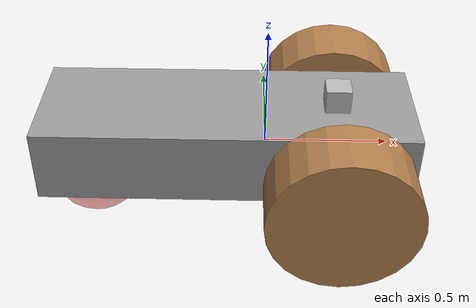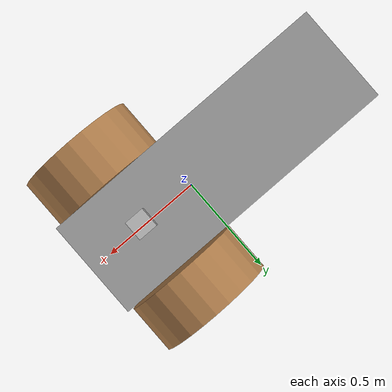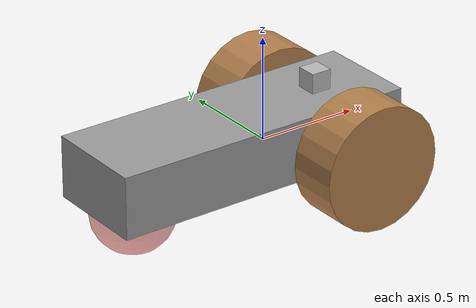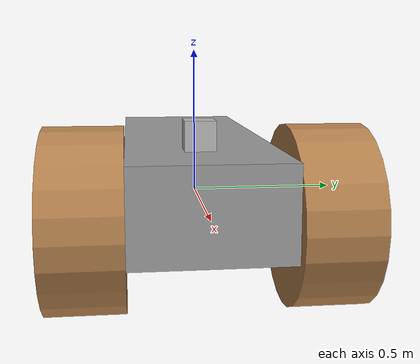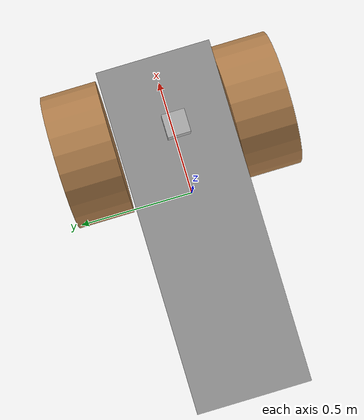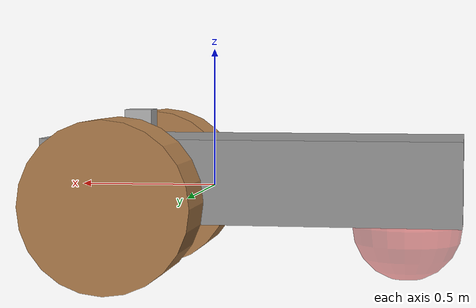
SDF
<?xml version='1.0'?>
<sdf version='1.7'>
  <model name='my_vehicle'>
    <link name='link_0'>
      <inertial>
        <mass>0.160277</mass>
        <inertia>
          <ixx>0.00446832</ixx>
          <ixy>0</ixy>
          <ixz>0</ixz>
          <iyy>0.0149511</iyy>
          <iyz>0</iyz>
          <izz>0.0162301</izz>
        </inertia>
        <pose>0 0 0 0 -0 0</pose>
      </inertial>
      <pose>-0.157978 -0.000666 0.032117 0 -0 0</pose>
      <gravity>1</gravity>
      <self_collide>0</self_collide>
      <kinematic>0</kinematic>
      <enable_wind>1</enable_wind>
      <visual name='visual'>
        <pose>0 0 0 0 -0 0</pose>
        <geometry>
          <box>
            <size>1.5 0.5 0.3</size>
          </box>
        </geometry>
        <material>
          <lighting>1</lighting>
          <script>
            <uri>file://media/materials/scripts/gazebo.material</uri>
            <name>Gazebo/Grey</name>
          </script>
          <shader type='pixel'>
            <normal_map>__default__</normal_map>
          </shader>
          <ambient>0.3 0.3 0.3 1</ambient>
          <diffuse>0.7 0.7 0.7 1</diffuse>
          <specular>0.01 0.01 0.01 1</specular>
          <emissive>0 0 0 1</emissive>
        </material>
        <transparency>0</transparency>
        <cast_shadows>1</cast_shadows>
      </visual>
      <collision name='collision_1'>
        <laser_retro>0</laser_retro>
        <max_contacts>10</max_contacts>
        <pose>0 0 0 0 -0 0</pose>
        <geometry>
          <box>
            <size>1 0.463848 0.345528</size>
          </box>
        </geometry>
        <surface>
          <friction>
            <ode>
              <mu>1</mu>
              <mu2>1</mu2>
              <fdir1>0 0 0</fdir1>
              <slip1>0</slip1>
              <slip2>0</slip2>
            </ode>
            <torsional>
              <coefficient>1</coefficient>
              <patch_radius>0</patch_radius>
              <surface_radius>0</surface_radius>
              <use_patch_radius>1</use_patch_radius>
              <ode>
                <slip>0</slip>
              </ode>
            </torsional>
          </friction>
          <bounce>
            <restitution_coefficient>0</restitution_coefficient>
            <threshold>1e+06</threshold>
          </bounce>
          <contact>
            <collide_without_contact>0</collide_without_contact>
            <collide_without_contact_bitmask>1</collide_without_contact_bitmask>
            <collide_bitmask>1</collide_bitmask>
            <ode>
              <soft_cfm>0</soft_cfm>
              <soft_erp>0.2</soft_erp>
              <kp>1e+13</kp>
              <kd>1</kd>
              <max_vel>0.01</max_vel>
              <min_depth>0</min_depth>
            </ode>
            <bullet>
              <split_impulse>1</split_impulse>
              <split_impulse_penetration_threshold>-0.01</split_impulse_penetration_threshold>
              <soft_cfm>0</soft_cfm>
              <soft_erp>0.2</soft_erp>
              <kp>1e+13</kp>
              <kd>1</kd>
            </bullet>
          </contact>
        </surface>
      </collision>
      <collision name='collision'>
        <laser_retro>0</laser_retro>
        <max_contacts>10</max_contacts>
        <pose>0 0 0 0 -0 0</pose>
        <geometry>
          <box>
            <size>1.5 0.5 0.3</size>
          </box>
        </geometry>
        <surface>
          <friction>
            <ode>
              <mu>1</mu>
              <mu2>1</mu2>
              <fdir1>0 0 0</fdir1>
              <slip1>0</slip1>
              <slip2>0</slip2>
            </ode>
            <torsional>
              <coefficient>1</coefficient>
              <patch_radius>0</patch_radius>
              <surface_radius>0</surface_radius>
              <use_patch_radius>1</use_patch_radius>
              <ode>
                <slip>0</slip>
              </ode>
            </torsional>
          </friction>
          <bounce>
            <restitution_coefficient>0</restitution_coefficient>
            <threshold>1e+06</threshold>
          </bounce>
          <contact>
            <collide_without_contact>0</collide_without_contact>
            <collide_without_contact_bitmask>1</collide_without_contact_bitmask>
            <collide_bitmask>1</collide_bitmask>
            <ode>
              <soft_cfm>0</soft_cfm>
              <soft_erp>0.2</soft_erp>
              <kp>1e+13</kp>
              <kd>1</kd>
              <max_vel>0.01</max_vel>
              <min_depth>0</min_depth>
            </ode>
            <bullet>
              <split_impulse>1</split_impulse>
              <split_impulse_penetration_threshold>-0.01</split_impulse_penetration_threshold>
              <soft_cfm>0</soft_cfm>
              <soft_erp>0.2</soft_erp>
              <kp>1e+13</kp>
              <kd>1</kd>
            </bullet>
          </contact>
        </surface>
      </collision>
    </link>
    <link name='link_1'>
      <inertial>
        <mass>0.0114509</mass>
        <inertia>
          <ixx>9.937e-05</ixx>
          <ixy>0</ixy>
          <ixz>0</ixz>
          <iyy>9.937e-05</iyy>
          <iyz>0</iyz>
          <izz>0.00018352</izz>
        </inertia>
        <pose>0 0 0 1.5707 -0 0</pose>
      </inertial>
      <pose>0.292022 0.389363 -0.036948 1.5707 -0 0</pose>
      <gravity>1</gravity>
      <self_collide>0</self_collide>
      <kinematic>0</kinematic>
      <enable_wind>0</enable_wind>
      <visual name='visual'>
        <pose>0 0 0 0 -0 0</pose>
        <geometry>
          <cylinder>
            <radius>0.3</radius>
            <length>0.25</length>
          </cylinder>
        </geometry>
        <material>
          <lighting>1</lighting>
          <script>
            <uri>file://media/materials/scripts/gazebo.material</uri>
            <name>Gazebo/Wood</name>
          </script>
          <shader type='pixel'>
            <normal_map>__default__</normal_map>
          </shader>
          <ambient>0.3 0.3 0.3 1</ambient>
          <diffuse>0.7 0.7 0.7 1</diffuse>
          <specular>0.01 0.01 0.01 1</specular>
          <emissive>0 0 0 1</emissive>
        </material>
        <transparency>0</transparency>
        <cast_shadows>1</cast_shadows>
      </visual>
      <collision name='collision'>
        <laser_retro>0</laser_retro>
        <max_contacts>10</max_contacts>
        <pose>0 0 0 0 -0 0</pose>
        <geometry>
          <cylinder>
            <radius>0.3</radius>
            <length>0.25</length>
          </cylinder>
        </geometry>
        <surface>
          <friction>
            <ode>
              <mu>1</mu>
              <mu2>1</mu2>
              <fdir1>0 0 0</fdir1>
              <slip1>0</slip1>
              <slip2>0</slip2>
            </ode>
            <torsional>
              <coefficient>1</coefficient>
              <patch_radius>0</patch_radius>
              <surface_radius>0</surface_radius>
              <use_patch_radius>1</use_patch_radius>
              <ode>
                <slip>0</slip>
              </ode>
            </torsional>
          </friction>
          <bounce>
            <restitution_coefficient>0</restitution_coefficient>
            <threshold>1e+06</threshold>
          </bounce>
          <contact>
            <collide_without_contact>0</collide_without_contact>
            <collide_without_contact_bitmask>1</collide_without_contact_bitmask>
            <collide_bitmask>1</collide_bitmask>
            <ode>
              <soft_cfm>0</soft_cfm>
              <soft_erp>0.2</soft_erp>
              <kp>1e+13</kp>
              <kd>1</kd>
              <max_vel>0.01</max_vel>
              <min_depth>0</min_depth>
            </ode>
            <bullet>
              <split_impulse>1</split_impulse>
              <split_impulse_penetration_threshold>-0.01</split_impulse_penetration_threshold>
              <soft_cfm>0</soft_cfm>
              <soft_erp>0.2</soft_erp>
              <kp>1e+13</kp>
              <kd>1</kd>
            </bullet>
          </contact>
        </surface>
      </collision>
    </link>
    <link name='link_1_clone'>
      <inertial>
        <mass>0.0114509</mass>
        <inertia>
          <ixx>9.937e-05</ixx>
          <ixy>0</ixy>
          <ixz>0</ixz>
          <iyy>9.937e-05</iyy>
          <iyz>0</iyz>
          <izz>0.00018352</izz>
        </inertia>
        <pose>0 0 0 1.5707 -0 0</pose>
      </inertial>
      <pose>0.292022 -0.375695 -0.036948 1.5707 -0 0</pose>
      <gravity>1</gravity>
      <self_collide>0</self_collide>
      <kinematic>0</kinematic>
      <enable_wind>0</enable_wind>
      <visual name='visual'>
        <pose>0 0 0 0 -0 0</pose>
        <geometry>
          <cylinder>
            <radius>0.3</radius>
            <length>0.25</length>
          </cylinder>
        </geometry>
        <material>
          <lighting>1</lighting>
          <script>
            <uri>file://media/materials/scripts/gazebo.material</uri>
            <name>Gazebo/Wood</name>
          </script>
          <shader type='pixel'>
            <normal_map>__default__</normal_map>
          </shader>
          <ambient>0.3 0.3 0.3 1</ambient>
          <diffuse>0.7 0.7 0.7 1</diffuse>
          <specular>0.01 0.01 0.01 1</specular>
          <emissive>0 0 0 1</emissive>
        </material>
        <transparency>0</transparency>
        <cast_shadows>1</cast_shadows>
      </visual>
      <collision name='collision'>
        <laser_retro>0</laser_retro>
        <max_contacts>10</max_contacts>
        <pose>0 0 0 0 -0 0</pose>
        <geometry>
          <cylinder>
            <radius>0.3</radius>
            <length>0.25</length>
          </cylinder>
        </geometry>
        <surface>
          <friction>
            <ode>
              <mu>1</mu>
              <mu2>1</mu2>
              <fdir1>0 0 0</fdir1>
              <slip1>0</slip1>
              <slip2>0</slip2>
            </ode>
            <torsional>
              <coefficient>1</coefficient>
              <patch_radius>0</patch_radius>
              <surface_radius>0</surface_radius>
              <use_patch_radius>1</use_patch_radius>
              <ode>
                <slip>0</slip>
              </ode>
            </torsional>
          </friction>
          <bounce>
            <restitution_coefficient>0</restitution_coefficient>
            <threshold>1e+06</threshold>
          </bounce>
          <contact>
            <collide_without_contact>0</collide_without_contact>
            <collide_without_contact_bitmask>1</collide_without_contact_bitmask>
            <collide_bitmask>1</collide_bitmask>
            <ode>
              <soft_cfm>0</soft_cfm>
              <soft_erp>0.2</soft_erp>
              <kp>1e+13</kp>
              <kd>1</kd>
              <max_vel>0.01</max_vel>
              <min_depth>0</min_depth>
            </ode>
            <bullet>
              <split_impulse>1</split_impulse>
              <split_impulse_penetration_threshold>-0.01</split_impulse_penetration_threshold>
              <soft_cfm>0</soft_cfm>
              <soft_erp>0.2</soft_erp>
              <kp>1e+13</kp>
              <kd>1</kd>
            </bullet>
          </contact>
        </surface>
      </collision>
    </link>
    <link name='link_2'>
      <inertial>
        <mass>1</mass>
        <inertia>
          <ixx>0.1</ixx>
          <ixy>0</ixy>
          <ixz>0</ixz>
          <iyy>0.1</iyy>
          <iyz>0</iyz>
          <izz>0.1</izz>
        </inertia>
        <pose>0 0 0 0 -0 0</pose>
      </inertial>
      <pose>-0.707978 -0.000666 -0.136948 0 -0 0</pose>
      <gravity>1</gravity>
      <self_collide>0</self_collide>
      <kinematic>0</kinematic>
      <enable_wind>0</enable_wind>
      <visual name='visual'>
        <pose>0 0 0 0 -0 0</pose>
        <geometry>
          <sphere>
            <radius>0.2</radius>
          </sphere>
        </geometry>
        <material>
          <lighting>1</lighting>
          <script>
            <uri>file://media/materials/scripts/gazebo.material</uri>
            <name>Gazebo/RedTransparent</name>
          </script>
          <shader type='pixel'>
            <normal_map>__default__</normal_map>
          </shader>
          <ambient>0.3 0.3 0.3 1</ambient>
          <diffuse>0.7 0.7 0.7 1</diffuse>
          <specular>0.01 0.01 0.01 1</specular>
          <emissive>0 0 0 1</emissive>
        </material>
        <transparency>0</transparency>
        <cast_shadows>1</cast_shadows>
      </visual>
      <collision name='collision'>
        <laser_retro>0</laser_retro>
        <max_contacts>10</max_contacts>
        <pose>0 0 0 0 -0 0</pose>
        <geometry>
          <sphere>
            <radius>0.2</radius>
          </sphere>
        </geometry>
        <surface>
          <friction>
            <ode>
              <mu>1</mu>
              <mu2>1</mu2>
              <fdir1>0 0 0</fdir1>
              <slip1>0</slip1>
              <slip2>0</slip2>
            </ode>
            <torsional>
              <coefficient>1</coefficient>
              <patch_radius>0</patch_radius>
              <surface_radius>0</surface_radius>
              <use_patch_radius>1</use_patch_radius>
              <ode>
                <slip>0</slip>
              </ode>
            </torsional>
          </friction>
          <bounce>
            <restitution_coefficient>0</restitution_coefficient>
            <threshold>1e+06</threshold>
          </bounce>
          <contact>
            <collide_without_contact>0</collide_without_contact>
            <collide_without_contact_bitmask>1</collide_without_contact_bitmask>
            <collide_bitmask>1</collide_bitmask>
            <ode>
              <soft_cfm>0</soft_cfm>
              <soft_erp>0.2</soft_erp>
              <kp>1e+13</kp>
              <kd>1</kd>
              <max_vel>0.01</max_vel>
              <min_depth>0</min_depth>
            </ode>
            <bullet>
              <split_impulse>1</split_impulse>
              <split_impulse_penetration_threshold>-0.01</split_impulse_penetration_threshold>
              <soft_cfm>0</soft_cfm>
              <soft_erp>0.2</soft_erp>
              <kp>1e+13</kp>
              <kd>1</kd>
            </bullet>
          </contact>
        </surface>
      </collision>
    </link>
    <model name='depth_camera'>
      <link name='link'>
        <pose>0 0 0.05 0 -0 0</pose>
        <inertial>
          <mass>0.1</mass>
          <inertia>
            <ixx>0.000166667</ixx>
            <iyy>0.000166667</iyy>
            <izz>0.000166667</izz>
            <ixy>0</ixy>
            <ixz>0</ixz>
            <iyz>0</iyz>
          </inertia>
        </inertial>
        <collision name='collision'>
          <geometry>
            <box>
              <size>0.1 0.1 0.1</size>
            </box>
          </geometry>
        </collision>
        <visual name='visual'>
          <geometry>
            <box>
              <size>0.1 0.1 0.1</size>
            </box>
          </geometry>
        </visual>
      </link>
      <pose>0.281912 -0.012336 0.178726 0 -0 0</pose>
    </model>
    <joint name='link_0_JOINT_0' type='revolute'>
      <parent>link_0</parent>
      <child>link_1</child>
      <pose>0 0 0 0 -0 0</pose>
      <axis>
        <xyz>0 0 1</xyz>
        <limit>
          <lower>-1.79769e+308</lower>
          <upper>1.79769e+308</upper>
          <effort>-1</effort>
          <velocity>-1</velocity>
        </limit>
        <dynamics>
          <spring_reference>0</spring_reference>
          <spring_stiffness>0</spring_stiffness>
          <damping>0</damping>
        </dynamics>
      </axis>
      <physics>
        <ode>
          <limit>
            <cfm>0</cfm>
            <erp>0.2</erp>
          </limit>
          <suspension>
            <cfm>0</cfm>
            <erp>0.2</erp>
          </suspension>
        </ode>
      </physics>
    </joint>
    <joint name='link_0_JOINT_1' type='revolute'>
      <parent>link_0</parent>
      <child>link_1_clone</child>
      <pose>0 0 0 0 -0 0</pose>
      <axis>
        <xyz>-0 -0 -1</xyz>
        <limit>
          <lower>-1.79769e+308</lower>
          <upper>1.79769e+308</upper>
          <effort>-1</effort>
          <velocity>-1</velocity>
        </limit>
        <dynamics>
          <spring_reference>0</spring_reference>
          <spring_stiffness>0</spring_stiffness>
          <damping>0</damping>
        </dynamics>
      </axis>
      <physics>
        <ode>
          <limit>
            <cfm>0</cfm>
            <erp>0.2</erp>
          </limit>
          <suspension>
            <cfm>0</cfm>
            <erp>0.2</erp>
          </suspension>
        </ode>
      </physics>
    </joint>
    <joint name='link_0_JOINT_2' type='revolute'>
      <parent>link_0</parent>
      <child>link_1</child>
      <pose>0 0 0 0 -0 0</pose>
      <axis>
        <xyz>0 0 1</xyz>
        <limit>
          <lower>-1.79769e+308</lower>
          <upper>1.79769e+308</upper>
          <effort>-1</effort>
          <velocity>-1</velocity>
        </limit>
        <dynamics>
          <spring_reference>0</spring_reference>
          <spring_stiffness>0</spring_stiffness>
          <damping>0</damping>
        </dynamics>
      </axis>
      <physics>
        <ode>
          <limit>
            <cfm>0</cfm>
            <erp>0.2</erp>
          </limit>
          <suspension>
            <cfm>0</cfm>
            <erp>0.2</erp>
          </suspension>
        </ode>
      </physics>
    </joint>
    <joint name='link_0_JOINT_3' type='revolute'>
      <parent>link_0</parent>
      <child>link_1_clone</child>
      <pose>0 0 0 0 -0 0</pose>
      <axis>
        <xyz>-0 -0 -1</xyz>
        <limit>
          <lower>-1.79769e+308</lower>
          <upper>1.79769e+308</upper>
          <effort>-1</effort>
          <velocity>-1</velocity>
        </limit>
        <dynamics>
          <spring_reference>0</spring_reference>
          <spring_stiffness>0</spring_stiffness>
          <damping>0</damping>
        </dynamics>
      </axis>
      <physics>
        <ode>
          <limit>
            <cfm>0</cfm>
            <erp>0.2</erp>
          </limit>
          <suspension>
            <cfm>0</cfm>
            <erp>0.2</erp>
          </suspension>
        </ode>
      </physics>
    </joint>
    <joint name='link_0_JOINT_4' type='ball'>
      <parent>link_0</parent>
      <child>link_2</child>
      <pose>0 0 0 0 -0 0</pose>
      <physics>
        <ode>
          <limit>
            <cfm>0</cfm>
            <erp>0.2</erp>
          </limit>
          <suspension>
            <cfm>0</cfm>
            <erp>0.2</erp>
          </suspension>
        </ode>
      </physics>
    </joint>
    <joint name='link_0_JOINT_5' type='fixed'>
      <parent>link_0</parent>
      <child>depth_camera::link</child>
      <pose>0 0 0 0 -0 0</pose>
      <physics>
        <ode>
          <limit>
            <cfm>0</cfm>
            <erp>0.2</erp>
          </limit>
          <suspension>
            <cfm>0</cfm>
            <erp>0.2</erp>
          </suspension>
        </ode>
      </physics>
    </joint>
    <static>0</static>
    <allow_auto_disable>1</allow_auto_disable>
  </model>
</sdf>
